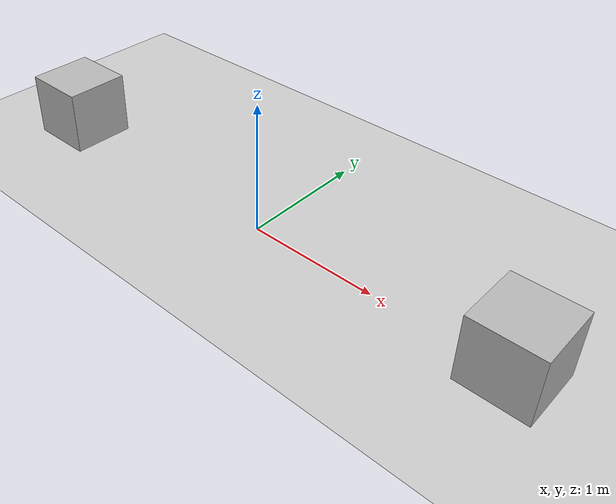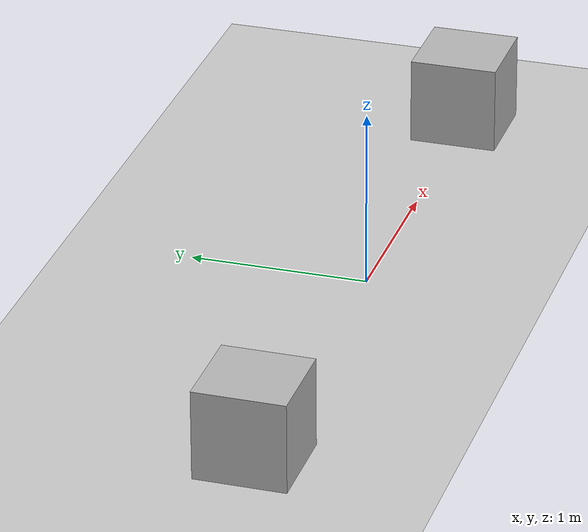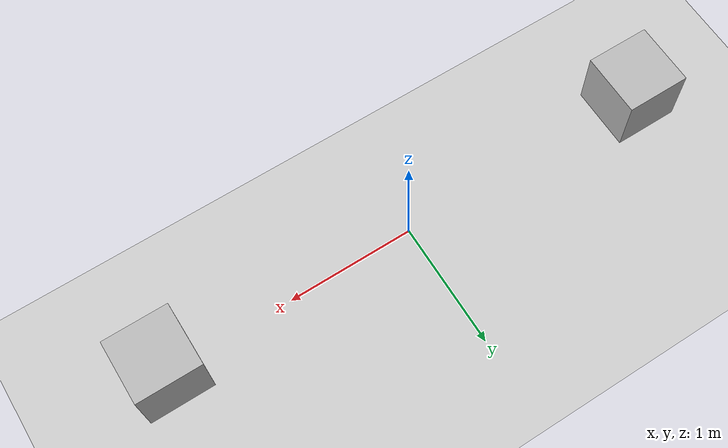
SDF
<?xml version="1.0" ?>
<sdf version="1.6">
  <world name="default">
    <include><uri>model://ground_plane</uri></include>
    <include><uri>model://sun</uri></include>

    <model name="box1">
      <static>true</static>
      <pose>2 0 0.25 0 0 0</pose>
      <link name="link">
        <collision name="c"><geometry><box><size>0.5 0.5 0.5</size></box></geometry></collision>
        <visual name="v"><geometry><box><size>0.5 0.5 0.5</size></box></geometry></visual>
      </link>
    </model>

    <model name="box2">
      <static>true</static>
      <pose>-2 0 0.25 0 0 0</pose>
      <link name="link">
        <collision name="c"><geometry><box><size>0.5 0.5 0.5</size></box></geometry></collision>
        <visual name="v"><geometry><box><size>0.5 0.5 0.5</size></box></geometry></visual>
      </link>
    </model>
  </world>
</sdf>
